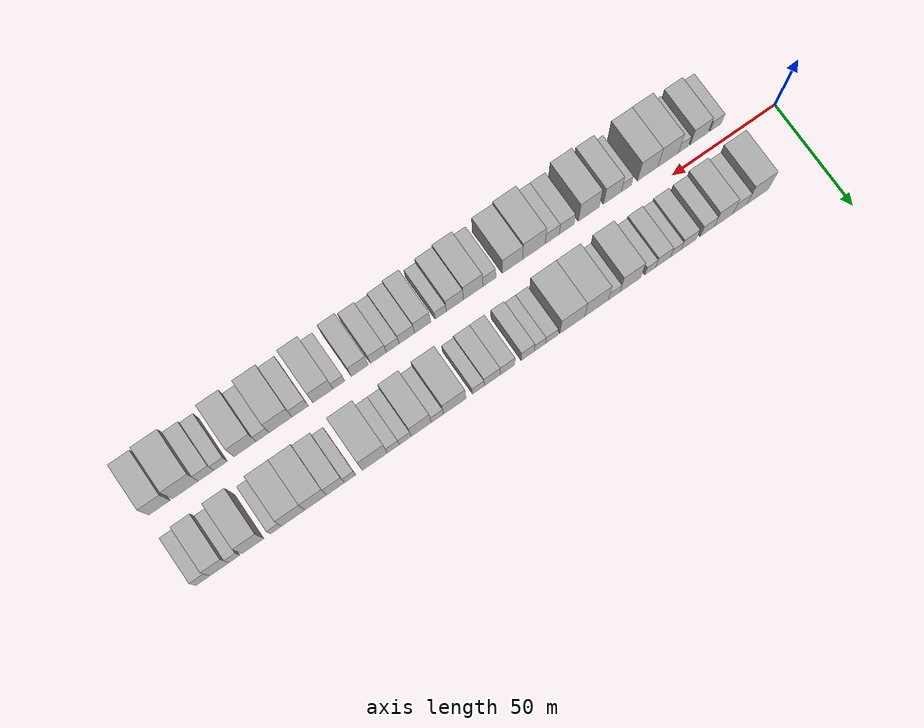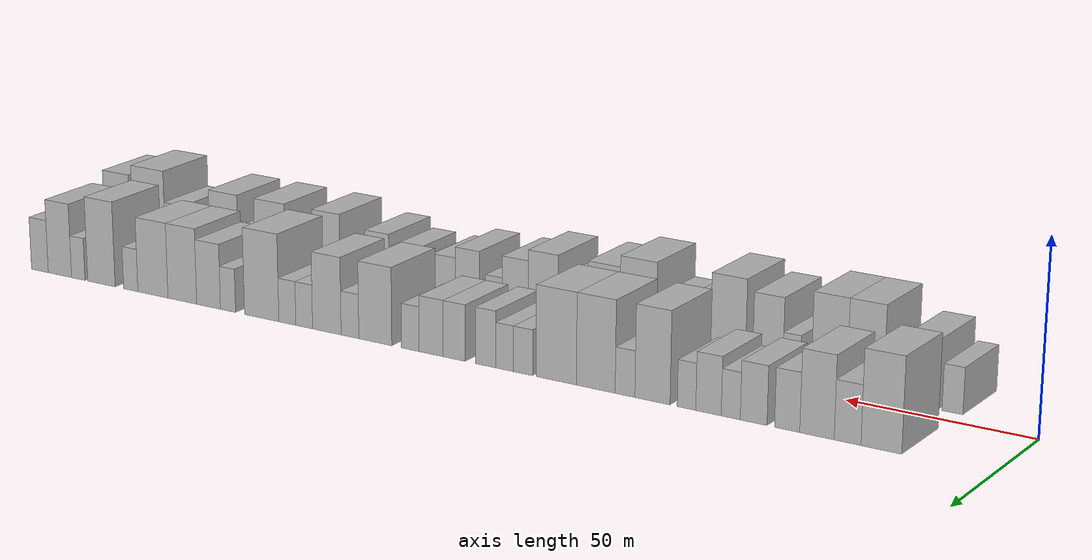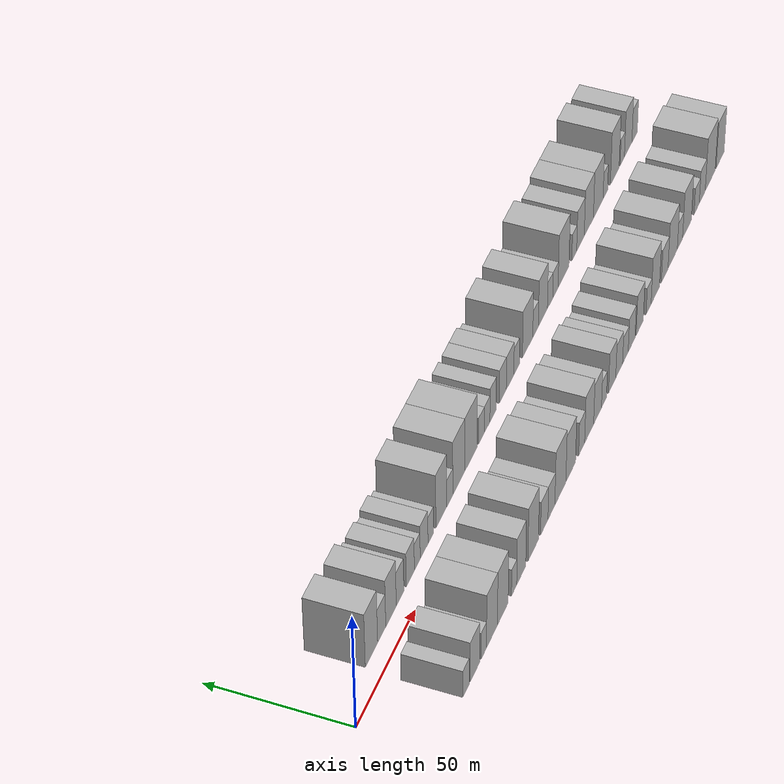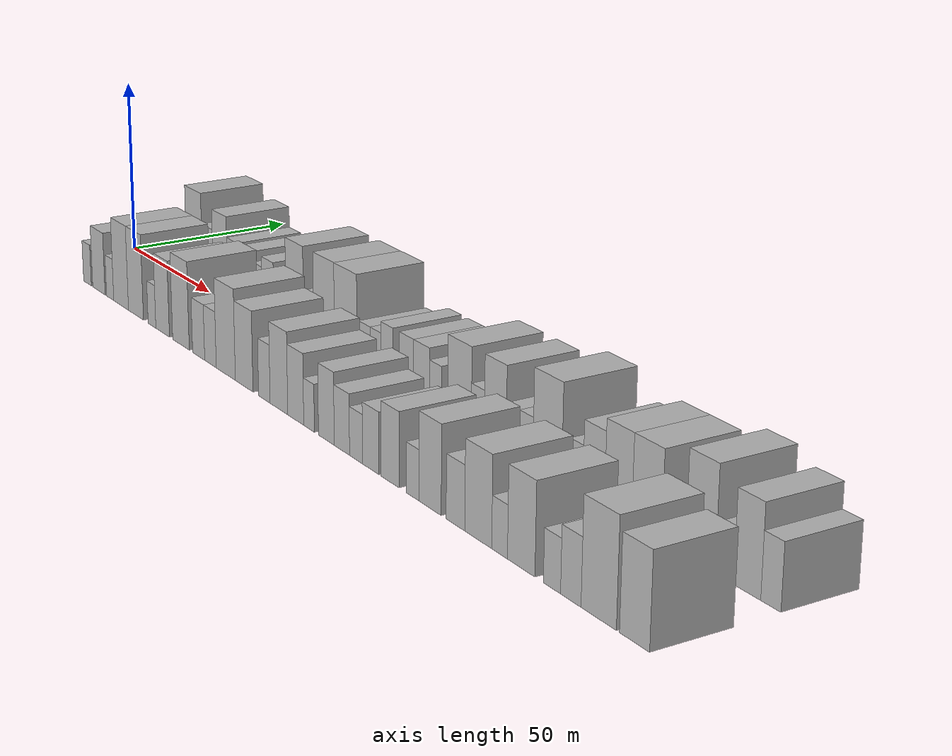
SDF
<sdf version="1.6">
 <world name="default">
  <scene>
   <sky><clouds><speed>12</speed></clouds></sky>
   <ambient>0.4 0.4 0.4 1</ambient>
   <background>0.7 0.7 0.7 1</background>
   <shadows>1</shadows>
  </scene>
  <gravity>0 0 -9.8066</gravity>
  <magnetic_field>6e-06 2.3e-05 -4.2e-05</magnetic_field>
  <physics default="0" name="default_physics" type="ode">
   <ode>
    <solver>
     <type>quick</type>
     <iters>10</iters>
     <sor>1.0</sor>
     <use_dynamic_moi_rescaling>0</use_dynamic_moi_rescaling>
    </solver>
    <constraints>
     <cfm>0</cfm>
     <erp>0.2</erp>
     <contact_max_correcting_vel>100</contact_max_correcting_vel>
     <contact_surface_layer>0.001</contact_surface_layer>
    </constraints>
   </ode>
   <max_step_size>0.004</max_step_size>
   <real_time_factor>1</real_time_factor>
   <real_time_update_rate>250</real_time_update_rate>
  </physics>
  <light name="sun" type="directional">
   <pose>0 0 10 0 0 0</pose>
   <diffuse>0.8 0.8 0.8 1</diffuse>
   <specular>0.2 0.2 0.2 1</specular>
   <attenuation>
    <range>1000</range>
    <constant>0.9</constant>
    <linear>0.01</linear>
    <quadratic>0.001</quadratic>
   </attenuation>
   <direction>-0.5 0.1 -0.9</direction>
  </light>
  <model name="building_1">
   <static>1</static>
   <pose>28.2035 16.0000 0 0.000000 0.000000 1.570796</pose>
   <link name="link">
    <pose>0 0 12.00 0 0 0</pose>
    <collision name="collision"><geometry><box><size>20.0000 10.4070 24.0000</size></box></geometry></collision>
    <visual name="visual">
     <cast_shadows>0</cast_shadows>
     <geometry><box><size>20.0000 10.4070 24.0000</size></box></geometry>
     <material>
      <script>
       <uri>model://HANNAS_wall/materials/scripts</uri>
       <uri>model://HANNAS_wall/materials/textures</uri>
       <name>vrc/HANNAS_wall</name>
      </script>
     </material>
    </visual>
   </link>
  </model>
  <model name="building_2">
   <static>1</static>
   <pose>36.8706 16.0000 0 0.000000 0.000000 1.570796</pose>
   <link name="link">
    <pose>0 0 7.50 0 0 0</pose>
    <collision name="collision"><geometry><box><size>20.0000 6.9271 15.0000</size></box></geometry></collision>
    <visual name="visual">
     <cast_shadows>0</cast_shadows>
     <geometry><box><size>20.0000 6.9271 15.0000</size></box></geometry>
     <material>
      <script>
       <uri>model://HANNAS_wall/materials/scripts</uri>
       <uri>model://HANNAS_wall/materials/textures</uri>
       <name>vrc/HANNAS_wall</name>
      </script>
     </material>
    </visual>
   </link>
  </model>
  <model name="building_3">
   <static>1</static>
   <pose>44.8318 16.0000 0 0.000000 0.000000 1.570796</pose>
   <link name="link">
    <pose>0 0 10.50 0 0 0</pose>
    <collision name="collision"><geometry><box><size>20.0000 8.9954 21.0000</size></box></geometry></collision>
    <visual name="visual">
     <cast_shadows>0</cast_shadows>
     <geometry><box><size>20.0000 8.9954 21.0000</size></box></geometry>
     <material>
      <script>
       <uri>model://HANNAS_wall/materials/scripts</uri>
       <uri>model://HANNAS_wall/materials/textures</uri>
       <name>vrc/HANNAS_wall</name>
      </script>
     </material>
    </visual>
   </link>
  </model>
  <model name="building_4">
   <static>1</static>
   <pose>52.6626 16.0000 0 0.000000 0.000000 1.570796</pose>
   <link name="link">
    <pose>0 0 7.50 0 0 0</pose>
    <collision name="collision"><geometry><box><size>20.0000 6.6663 15.0000</size></box></geometry></collision>
    <visual name="visual">
     <cast_shadows>0</cast_shadows>
     <geometry><box><size>20.0000 6.6663 15.0000</size></box></geometry>
     <material>
      <script>
       <uri>model://HANNAS_wall/materials/scripts</uri>
       <uri>model://HANNAS_wall/materials/textures</uri>
       <name>vrc/HANNAS_wall</name>
      </script>
     </material>
    </visual>
   </link>
  </model>
  <model name="building_5">
   <static>1</static>
   <pose>61.5782 16.0000 0 0.000000 0.000000 1.570796</pose>
   <link name="link">
    <pose>0 0 7.50 0 0 0</pose>
    <collision name="collision"><geometry><box><size>20.0000 7.1649 15.0000</size></box></geometry></collision>
    <visual name="visual">
     <cast_shadows>0</cast_shadows>
     <geometry><box><size>20.0000 7.1649 15.0000</size></box></geometry>
     <material>
      <script>
       <uri>model://HANNAS_wall/materials/scripts</uri>
       <uri>model://HANNAS_wall/materials/textures</uri>
       <name>vrc/HANNAS_wall</name>
      </script>
     </material>
    </visual>
   </link>
  </model>
  <model name="building_6">
   <static>1</static>
   <pose>67.7352 16.0000 0 0.000000 0.000000 1.570796</pose>
   <link name="link">
    <pose>0 0 6.00 0 0 0</pose>
    <collision name="collision"><geometry><box><size>20.0000 5.1490 12.0000</size></box></geometry></collision>
    <visual name="visual">
     <cast_shadows>0</cast_shadows>
     <geometry><box><size>20.0000 5.1490 12.0000</size></box></geometry>
     <material>
      <script>
       <uri>model://HANNAS_wall/materials/scripts</uri>
       <uri>model://HANNAS_wall/materials/textures</uri>
       <name>vrc/HANNAS_wall</name>
      </script>
     </material>
    </visual>
   </link>
  </model>
  <model name="building_7">
   <static>1</static>
   <pose>73.7785 16.0000 0 0.000000 0.000000 1.570796</pose>
   <link name="link">
    <pose>0 0 7.50 0 0 0</pose>
    <collision name="collision"><geometry><box><size>20.0000 6.9376 15.0000</size></box></geometry></collision>
    <visual name="visual">
     <cast_shadows>0</cast_shadows>
     <geometry><box><size>20.0000 6.9376 15.0000</size></box></geometry>
     <material>
      <script>
       <uri>model://HANNAS_wall/materials/scripts</uri>
       <uri>model://HANNAS_wall/materials/textures</uri>
       <name>vrc/HANNAS_wall</name>
      </script>
     </material>
    </visual>
   </link>
  </model>
  <model name="building_8">
   <static>1</static>
   <pose>79.8023 16.0000 0 0.000000 0.000000 1.570796</pose>
   <link name="link">
    <pose>0 0 6.00 0 0 0</pose>
    <collision name="collision"><geometry><box><size>20.0000 5.1100 12.0000</size></box></geometry></collision>
    <visual name="visual">
     <cast_shadows>0</cast_shadows>
     <geometry><box><size>20.0000 5.1100 12.0000</size></box></geometry>
     <material>
      <script>
       <uri>model://HANNAS_wall/materials/scripts</uri>
       <uri>model://HANNAS_wall/materials/textures</uri>
       <name>vrc/HANNAS_wall</name>
      </script>
     </material>
    </visual>
   </link>
  </model>
  <model name="building_9">
   <static>1</static>
   <pose>89.2680 16.0000 0 0.000000 0.000000 1.570796</pose>
   <link name="link">
    <pose>0 0 12.00 0 0 0</pose>
    <collision name="collision"><geometry><box><size>20.0000 9.8214 24.0000</size></box></geometry></collision>
    <visual name="visual">
     <cast_shadows>0</cast_shadows>
     <geometry><box><size>20.0000 9.8214 24.0000</size></box></geometry>
     <material>
      <script>
       <uri>model://HANNAS_wall/materials/scripts</uri>
       <uri>model://HANNAS_wall/materials/textures</uri>
       <name>vrc/HANNAS_wall</name>
      </script>
     </material>
    </visual>
   </link>
  </model>
  <model name="building_10">
   <static>1</static>
   <pose>96.9650 16.0000 0 0.000000 0.000000 1.570796</pose>
   <link name="link">
    <pose>0 0 6.00 0 0 0</pose>
    <collision name="collision"><geometry><box><size>20.0000 5.5726 12.0000</size></box></geometry></collision>
    <visual name="visual">
     <cast_shadows>0</cast_shadows>
     <geometry><box><size>20.0000 5.5726 12.0000</size></box></geometry>
     <material>
      <script>
       <uri>model://HANNAS_wall/materials/scripts</uri>
       <uri>model://HANNAS_wall/materials/textures</uri>
       <name>vrc/HANNAS_wall</name>
      </script>
     </material>
    </visual>
   </link>
  </model>
  <model name="building_11">
   <static>1</static>
   <pose>105.2956 16.0000 0 0.000000 0.000000 1.570796</pose>
   <link name="link">
    <pose>0 0 12.00 0 0 0</pose>
    <collision name="collision"><geometry><box><size>20.0000 11.0885 24.0000</size></box></geometry></collision>
    <visual name="visual">
     <cast_shadows>0</cast_shadows>
     <geometry><box><size>20.0000 11.0885 24.0000</size></box></geometry>
     <material>
      <script>
       <uri>model://HANNAS_wall/materials/scripts</uri>
       <uri>model://HANNAS_wall/materials/textures</uri>
       <name>vrc/HANNAS_wall</name>
      </script>
     </material>
    </visual>
   </link>
  </model>
  <model name="building_12">
   <static>1</static>
   <pose>116.6909 16.0000 0 0.000000 0.000000 1.570796</pose>
   <link name="link">
    <pose>0 0 12.00 0 0 0</pose>
    <collision name="collision"><geometry><box><size>20.0000 11.7021 24.0000</size></box></geometry></collision>
    <visual name="visual">
     <cast_shadows>0</cast_shadows>
     <geometry><box><size>20.0000 11.7021 24.0000</size></box></geometry>
     <material>
      <script>
       <uri>model://HANNAS_wall/materials/scripts</uri>
       <uri>model://HANNAS_wall/materials/textures</uri>
       <name>vrc/HANNAS_wall</name>
      </script>
     </material>
    </visual>
   </link>
  </model>
  <model name="building_13">
   <static>1</static>
   <pose>126.3763 16.0000 0 0.000000 0.000000 1.570796</pose>
   <link name="link">
    <pose>0 0 6.00 0 0 0</pose>
    <collision name="collision"><geometry><box><size>20.0000 5.6688 12.0000</size></box></geometry></collision>
    <visual name="visual">
     <cast_shadows>0</cast_shadows>
     <geometry><box><size>20.0000 5.6688 12.0000</size></box></geometry>
     <material>
      <script>
       <uri>model://HANNAS_wall/materials/scripts</uri>
       <uri>model://HANNAS_wall/materials/textures</uri>
       <name>vrc/HANNAS_wall</name>
      </script>
     </material>
    </visual>
   </link>
  </model>
  <model name="building_14">
   <static>1</static>
   <pose>131.8402 16.0000 0 0.000000 0.000000 1.570796</pose>
   <link name="link">
    <pose>0 0 6.00 0 0 0</pose>
    <collision name="collision"><geometry><box><size>20.0000 5.2590 12.0000</size></box></geometry></collision>
    <visual name="visual">
     <cast_shadows>0</cast_shadows>
     <geometry><box><size>20.0000 5.2590 12.0000</size></box></geometry>
     <material>
      <script>
       <uri>model://HANNAS_wall/materials/scripts</uri>
       <uri>model://HANNAS_wall/materials/textures</uri>
       <name>vrc/HANNAS_wall</name>
      </script>
     </material>
    </visual>
   </link>
  </model>
  <model name="building_15">
   <static>1</static>
   <pose>137.5098 16.0000 0 0.000000 0.000000 1.570796</pose>
   <link name="link">
    <pose>0 0 7.50 0 0 0</pose>
    <collision name="collision"><geometry><box><size>20.0000 6.0801 15.0000</size></box></geometry></collision>
    <visual name="visual">
     <cast_shadows>0</cast_shadows>
     <geometry><box><size>20.0000 6.0801 15.0000</size></box></geometry>
     <material>
      <script>
       <uri>model://HANNAS_wall/materials/scripts</uri>
       <uri>model://HANNAS_wall/materials/textures</uri>
       <name>vrc/HANNAS_wall</name>
      </script>
     </material>
    </visual>
   </link>
  </model>
  <model name="building_16">
   <static>1</static>
   <pose>146.9036 16.0000 0 0.000000 0.000000 1.570796</pose>
   <link name="link">
    <pose>0 0 7.50 0 0 0</pose>
    <collision name="collision"><geometry><box><size>20.0000 6.7075 15.0000</size></box></geometry></collision>
    <visual name="visual">
     <cast_shadows>0</cast_shadows>
     <geometry><box><size>20.0000 6.7075 15.0000</size></box></geometry>
     <material>
      <script>
       <uri>model://HANNAS_wall/materials/scripts</uri>
       <uri>model://HANNAS_wall/materials/textures</uri>
       <name>vrc/HANNAS_wall</name>
      </script>
     </material>
    </visual>
   </link>
  </model>
  <model name="building_17">
   <static>1</static>
   <pose>153.9549 16.0000 0 0.000000 0.000000 1.570796</pose>
   <link name="link">
    <pose>0 0 7.50 0 0 0</pose>
    <collision name="collision"><geometry><box><size>20.0000 7.3951 15.0000</size></box></geometry></collision>
    <visual name="visual">
     <cast_shadows>0</cast_shadows>
     <geometry><box><size>20.0000 7.3951 15.0000</size></box></geometry>
     <material>
      <script>
       <uri>model://HANNAS_wall/materials/scripts</uri>
       <uri>model://HANNAS_wall/materials/textures</uri>
       <name>vrc/HANNAS_wall</name>
      </script>
     </material>
    </visual>
   </link>
  </model>
  <model name="building_18">
   <static>1</static>
   <pose>160.3797 16.0000 0 0.000000 0.000000 1.570796</pose>
   <link name="link">
    <pose>0 0 6.00 0 0 0</pose>
    <collision name="collision"><geometry><box><size>20.0000 5.4544 12.0000</size></box></geometry></collision>
    <visual name="visual">
     <cast_shadows>0</cast_shadows>
     <geometry><box><size>20.0000 5.4544 12.0000</size></box></geometry>
     <material>
      <script>
       <uri>model://HANNAS_wall/materials/scripts</uri>
       <uri>model://HANNAS_wall/materials/textures</uri>
       <name>vrc/HANNAS_wall</name>
      </script>
     </material>
    </visual>
   </link>
  </model>
  <model name="building_19">
   <static>1</static>
   <pose>171.2821 16.0000 0 0.000000 0.000000 1.570796</pose>
   <link name="link">
    <pose>0 0 10.50 0 0 0</pose>
    <collision name="collision"><geometry><box><size>20.0000 10.3504 21.0000</size></box></geometry></collision>
    <visual name="visual">
     <cast_shadows>0</cast_shadows>
     <geometry><box><size>20.0000 10.3504 21.0000</size></box></geometry>
     <material>
      <script>
       <uri>model://HANNAS_wall/materials/scripts</uri>
       <uri>model://HANNAS_wall/materials/textures</uri>
       <name>vrc/HANNAS_wall</name>
      </script>
     </material>
    </visual>
   </link>
  </model>
  <model name="building_20">
   <static>1</static>
   <pose>179.2618 16.0000 0 0.000000 0.000000 1.570796</pose>
   <link name="link">
    <pose>0 0 6.00 0 0 0</pose>
    <collision name="collision"><geometry><box><size>20.0000 5.6091 12.0000</size></box></geometry></collision>
    <visual name="visual">
     <cast_shadows>0</cast_shadows>
     <geometry><box><size>20.0000 5.6091 12.0000</size></box></geometry>
     <material>
      <script>
       <uri>model://HANNAS_wall/materials/scripts</uri>
       <uri>model://HANNAS_wall/materials/textures</uri>
       <name>vrc/HANNAS_wall</name>
      </script>
     </material>
    </visual>
   </link>
  </model>
  <model name="building_21">
   <static>1</static>
   <pose>186.6494 16.0000 0 0.000000 0.000000 1.570796</pose>
   <link name="link">
    <pose>0 0 10.50 0 0 0</pose>
    <collision name="collision"><geometry><box><size>20.0000 9.1661 21.0000</size></box></geometry></collision>
    <visual name="visual">
     <cast_shadows>0</cast_shadows>
     <geometry><box><size>20.0000 9.1661 21.0000</size></box></geometry>
     <material>
      <script>
       <uri>model://HANNAS_wall/materials/scripts</uri>
       <uri>model://HANNAS_wall/materials/textures</uri>
       <name>vrc/HANNAS_wall</name>
      </script>
     </material>
    </visual>
   </link>
  </model>
  <model name="building_22">
   <static>1</static>
   <pose>193.9422 16.0000 0 0.000000 0.000000 1.570796</pose>
   <link name="link">
    <pose>0 0 6.00 0 0 0</pose>
    <collision name="collision"><geometry><box><size>20.0000 5.4194 12.0000</size></box></geometry></collision>
    <visual name="visual">
     <cast_shadows>0</cast_shadows>
     <geometry><box><size>20.0000 5.4194 12.0000</size></box></geometry>
     <material>
      <script>
       <uri>model://HANNAS_wall/materials/scripts</uri>
       <uri>model://HANNAS_wall/materials/textures</uri>
       <name>vrc/HANNAS_wall</name>
      </script>
     </material>
    </visual>
   </link>
  </model>
  <model name="building_23">
   <static>1</static>
   <pose>199.4075 16.0000 0 0.000000 0.000000 1.570796</pose>
   <link name="link">
    <pose>0 0 6.00 0 0 0</pose>
    <collision name="collision"><geometry><box><size>20.0000 5.5114 12.0000</size></box></geometry></collision>
    <visual name="visual">
     <cast_shadows>0</cast_shadows>
     <geometry><box><size>20.0000 5.5114 12.0000</size></box></geometry>
     <material>
      <script>
       <uri>model://HANNAS_wall/materials/scripts</uri>
       <uri>model://HANNAS_wall/materials/textures</uri>
       <name>vrc/HANNAS_wall</name>
      </script>
     </material>
    </visual>
   </link>
  </model>
  <model name="building_24">
   <static>1</static>
   <pose>207.8202 16.0000 0 0.000000 0.000000 1.570796</pose>
   <link name="link">
    <pose>0 0 12.00 0 0 0</pose>
    <collision name="collision"><geometry><box><size>20.0000 11.3139 24.0000</size></box></geometry></collision>
    <visual name="visual">
     <cast_shadows>0</cast_shadows>
     <geometry><box><size>20.0000 11.3139 24.0000</size></box></geometry>
     <material>
      <script>
       <uri>model://HANNAS_wall/materials/scripts</uri>
       <uri>model://HANNAS_wall/materials/textures</uri>
       <name>vrc/HANNAS_wall</name>
      </script>
     </material>
    </visual>
   </link>
  </model>
  <model name="building_25">
   <static>1</static>
   <pose>219.0032 16.0000 0 0.000000 0.000000 1.570796</pose>
   <link name="link">
    <pose>0 0 6.00 0 0 0</pose>
    <collision name="collision"><geometry><box><size>20.0000 5.0522 12.0000</size></box></geometry></collision>
    <visual name="visual">
     <cast_shadows>0</cast_shadows>
     <geometry><box><size>20.0000 5.0522 12.0000</size></box></geometry>
     <material>
      <script>
       <uri>model://HANNAS_wall/materials/scripts</uri>
       <uri>model://HANNAS_wall/materials/textures</uri>
       <name>vrc/HANNAS_wall</name>
      </script>
     </material>
    </visual>
   </link>
  </model>
  <model name="building_26">
   <static>1</static>
   <pose>225.5476 16.0000 0 0.000000 0.000000 1.570796</pose>
   <link name="link">
    <pose>0 0 9.00 0 0 0</pose>
    <collision name="collision"><geometry><box><size>20.0000 8.0365 18.0000</size></box></geometry></collision>
    <visual name="visual">
     <cast_shadows>0</cast_shadows>
     <geometry><box><size>20.0000 8.0365 18.0000</size></box></geometry>
     <material>
      <script>
       <uri>model://HANNAS_wall/materials/scripts</uri>
       <uri>model://HANNAS_wall/materials/textures</uri>
       <name>vrc/HANNAS_wall</name>
      </script>
     </material>
    </visual>
   </link>
  </model>
  <model name="building_27">
   <static>1</static>
   <pose>234.4667 16.0000 0 0.000000 0.000000 1.570796</pose>
   <link name="link">
    <pose>0 0 10.50 0 0 0</pose>
    <collision name="collision"><geometry><box><size>20.0000 9.8018 21.0000</size></box></geometry></collision>
    <visual name="visual">
     <cast_shadows>0</cast_shadows>
     <geometry><box><size>20.0000 9.8018 21.0000</size></box></geometry>
     <material>
      <script>
       <uri>model://HANNAS_wall/materials/scripts</uri>
       <uri>model://HANNAS_wall/materials/textures</uri>
       <name>vrc/HANNAS_wall</name>
      </script>
     </material>
    </visual>
   </link>
  </model>
  <model name="building_28">
   <static>1</static>
   <pose>244.5770 16.0000 0 0.000000 0.000000 1.570796</pose>
   <link name="link">
    <pose>0 0 10.50 0 0 0</pose>
    <collision name="collision"><geometry><box><size>20.0000 10.4188 21.0000</size></box></geometry></collision>
    <visual name="visual">
     <cast_shadows>0</cast_shadows>
     <geometry><box><size>20.0000 10.4188 21.0000</size></box></geometry>
     <material>
      <script>
       <uri>model://HANNAS_wall/materials/scripts</uri>
       <uri>model://HANNAS_wall/materials/textures</uri>
       <name>vrc/HANNAS_wall</name>
      </script>
     </material>
    </visual>
   </link>
  </model>
  <model name="building_29">
   <static>1</static>
   <pose>252.2715 16.0000 0 0.000000 0.000000 1.570796</pose>
   <link name="link">
    <pose>0 0 6.00 0 0 0</pose>
    <collision name="collision"><geometry><box><size>20.0000 4.9702 12.0000</size></box></geometry></collision>
    <visual name="visual">
     <cast_shadows>0</cast_shadows>
     <geometry><box><size>20.0000 4.9702 12.0000</size></box></geometry>
     <material>
      <script>
       <uri>model://HANNAS_wall/materials/scripts</uri>
       <uri>model://HANNAS_wall/materials/textures</uri>
       <name>vrc/HANNAS_wall</name>
      </script>
     </material>
    </visual>
   </link>
  </model>
  <model name="building_30">
   <static>1</static>
   <pose>262.6057 16.0000 0 0.000000 0.000000 1.570796</pose>
   <link name="link">
    <pose>0 0 12.00 0 0 0</pose>
    <collision name="collision"><geometry><box><size>20.0000 9.6982 24.0000</size></box></geometry></collision>
    <visual name="visual">
     <cast_shadows>0</cast_shadows>
     <geometry><box><size>20.0000 9.6982 24.0000</size></box></geometry>
     <material>
      <script>
       <uri>model://HANNAS_wall/materials/scripts</uri>
       <uri>model://HANNAS_wall/materials/textures</uri>
       <name>vrc/HANNAS_wall</name>
      </script>
     </material>
    </visual>
   </link>
  </model>
  <model name="building_31">
   <static>1</static>
   <pose>270.8627 16.0000 0 0.000000 0.000000 1.570796</pose>
   <link name="link">
    <pose>0 0 6.00 0 0 0</pose>
    <collision name="collision"><geometry><box><size>20.0000 4.8157 12.0000</size></box></geometry></collision>
    <visual name="visual">
     <cast_shadows>0</cast_shadows>
     <geometry><box><size>20.0000 4.8157 12.0000</size></box></geometry>
     <material>
      <script>
       <uri>model://HANNAS_wall/materials/scripts</uri>
       <uri>model://HANNAS_wall/materials/textures</uri>
       <name>vrc/HANNAS_wall</name>
      </script>
     </material>
    </visual>
   </link>
  </model>
  <model name="building_32">
   <static>1</static>
   <pose>277.4708 16.0000 0 0.000000 0.000000 1.570796</pose>
   <link name="link">
    <pose>0 0 10.50 0 0 0</pose>
    <collision name="collision"><geometry><box><size>20.0000 8.4004 21.0000</size></box></geometry></collision>
    <visual name="visual">
     <cast_shadows>0</cast_shadows>
     <geometry><box><size>20.0000 8.4004 21.0000</size></box></geometry>
     <material>
      <script>
       <uri>model://HANNAS_wall/materials/scripts</uri>
       <uri>model://HANNAS_wall/materials/textures</uri>
       <name>vrc/HANNAS_wall</name>
      </script>
     </material>
    </visual>
   </link>
  </model>
  <model name="building_33">
   <static>1</static>
   <pose>284.7169 16.0000 0 0.000000 0.000000 1.570796</pose>
   <link name="link">
    <pose>0 0 7.50 0 0 0</pose>
    <collision name="collision"><geometry><box><size>20.0000 6.0919 15.0000</size></box></geometry></collision>
    <visual name="visual">
     <cast_shadows>0</cast_shadows>
     <geometry><box><size>20.0000 6.0919 15.0000</size></box></geometry>
     <material>
      <script>
       <uri>model://HANNAS_wall/materials/scripts</uri>
       <uri>model://HANNAS_wall/materials/textures</uri>
       <name>vrc/HANNAS_wall</name>
      </script>
     </material>
    </visual>
   </link>
  </model>
  <model name="building_34">
   <static>1</static>
   <pose>24.7283 -16.0000 0 0.000000 0.000000 1.570796</pose>
   <link name="link">
    <pose>0 0 6.00 0 0 0</pose>
    <collision name="collision"><geometry><box><size>20.0000 5.4567 12.0000</size></box></geometry></collision>
    <visual name="visual">
     <cast_shadows>0</cast_shadows>
     <geometry><box><size>20.0000 5.4567 12.0000</size></box></geometry>
     <material>
      <script>
       <uri>model://HANNAS_wall/materials/scripts</uri>
       <uri>model://HANNAS_wall/materials/textures</uri>
       <name>vrc/HANNAS_wall</name>
      </script>
     </material>
    </visual>
   </link>
  </model>
  <model name="building_35">
   <static>1</static>
   <pose>32.7598 -16.0000 0 0.000000 0.000000 1.570796</pose>
   <link name="link">
    <pose>0 0 9.00 0 0 0</pose>
    <collision name="collision"><geometry><box><size>20.0000 8.6064 18.0000</size></box></geometry></collision>
    <visual name="visual">
     <cast_shadows>0</cast_shadows>
     <geometry><box><size>20.0000 8.6064 18.0000</size></box></geometry>
     <material>
      <script>
       <uri>model://HANNAS_wall/materials/scripts</uri>
       <uri>model://HANNAS_wall/materials/textures</uri>
       <name>vrc/HANNAS_wall</name>
      </script>
     </material>
    </visual>
   </link>
  </model>
  <model name="building_36">
   <static>1</static>
   <pose>40.5078 -16.0000 0 0.000000 0.000000 1.570796</pose>
   <link name="link">
    <pose>0 0 6.00 0 0 0</pose>
    <collision name="collision"><geometry><box><size>20.0000 4.8897 12.0000</size></box></geometry></collision>
    <visual name="visual">
     <cast_shadows>0</cast_shadows>
     <geometry><box><size>20.0000 4.8897 12.0000</size></box></geometry>
     <material>
      <script>
       <uri>model://HANNAS_wall/materials/scripts</uri>
       <uri>model://HANNAS_wall/materials/textures</uri>
       <name>vrc/HANNAS_wall</name>
      </script>
     </material>
    </visual>
   </link>
  </model>
  <model name="building_37">
   <static>1</static>
   <pose>47.8938 -16.0000 0 0.000000 0.000000 1.570796</pose>
   <link name="link">
    <pose>0 0 12.00 0 0 0</pose>
    <collision name="collision"><geometry><box><size>20.0000 9.8823 24.0000</size></box></geometry></collision>
    <visual name="visual">
     <cast_shadows>0</cast_shadows>
     <geometry><box><size>20.0000 9.8823 24.0000</size></box></geometry>
     <material>
      <script>
       <uri>model://HANNAS_wall/materials/scripts</uri>
       <uri>model://HANNAS_wall/materials/textures</uri>
       <name>vrc/HANNAS_wall</name>
      </script>
     </material>
    </visual>
   </link>
  </model>
  <model name="building_38">
   <static>1</static>
   <pose>57.7084 -16.0000 0 0.000000 0.000000 1.570796</pose>
   <link name="link">
    <pose>0 0 12.00 0 0 0</pose>
    <collision name="collision"><geometry><box><size>20.0000 9.7469 24.0000</size></box></geometry></collision>
    <visual name="visual">
     <cast_shadows>0</cast_shadows>
     <geometry><box><size>20.0000 9.7469 24.0000</size></box></geometry>
     <material>
      <script>
       <uri>model://HANNAS_wall/materials/scripts</uri>
       <uri>model://HANNAS_wall/materials/textures</uri>
       <name>vrc/HANNAS_wall</name>
      </script>
     </material>
    </visual>
   </link>
  </model>
  <model name="building_39">
   <static>1</static>
   <pose>68.0237 -16.0000 0 0.000000 0.000000 1.570796</pose>
   <link name="link">
    <pose>0 0 6.00 0 0 0</pose>
    <collision name="collision"><geometry><box><size>20.0000 4.8837 12.0000</size></box></geometry></collision>
    <visual name="visual">
     <cast_shadows>0</cast_shadows>
     <geometry><box><size>20.0000 4.8837 12.0000</size></box></geometry>
     <material>
      <script>
       <uri>model://HANNAS_wall/materials/scripts</uri>
       <uri>model://HANNAS_wall/materials/textures</uri>
       <name>vrc/HANNAS_wall</name>
      </script>
     </material>
    </visual>
   </link>
  </model>
  <model name="building_40">
   <static>1</static>
   <pose>74.6983 -16.0000 0 0.000000 0.000000 1.570796</pose>
   <link name="link">
    <pose>0 0 10.50 0 0 0</pose>
    <collision name="collision"><geometry><box><size>20.0000 8.4655 21.0000</size></box></geometry></collision>
    <visual name="visual">
     <cast_shadows>0</cast_shadows>
     <geometry><box><size>20.0000 8.4655 21.0000</size></box></geometry>
     <material>
      <script>
       <uri>model://HANNAS_wall/materials/scripts</uri>
       <uri>model://HANNAS_wall/materials/textures</uri>
       <name>vrc/HANNAS_wall</name>
      </script>
     </material>
    </visual>
   </link>
  </model>
  <model name="building_41">
   <static>1</static>
   <pose>85.9232 -16.0000 0 0.000000 0.000000 1.570796</pose>
   <link name="link">
    <pose>0 0 12.00 0 0 0</pose>
    <collision name="collision"><geometry><box><size>20.0000 9.9843 24.0000</size></box></geometry></collision>
    <visual name="visual">
     <cast_shadows>0</cast_shadows>
     <geometry><box><size>20.0000 9.9843 24.0000</size></box></geometry>
     <material>
      <script>
       <uri>model://HANNAS_wall/materials/scripts</uri>
       <uri>model://HANNAS_wall/materials/textures</uri>
       <name>vrc/HANNAS_wall</name>
      </script>
     </material>
    </visual>
   </link>
  </model>
  <model name="building_42">
   <static>1</static>
   <pose>96.4489 -16.0000 0 0.000000 0.000000 1.570796</pose>
   <link name="link">
    <pose>0 0 7.50 0 0 0</pose>
    <collision name="collision"><geometry><box><size>20.0000 7.0672 15.0000</size></box></geometry></collision>
    <visual name="visual">
     <cast_shadows>0</cast_shadows>
     <geometry><box><size>20.0000 7.0672 15.0000</size></box></geometry>
     <material>
      <script>
       <uri>model://HANNAS_wall/materials/scripts</uri>
       <uri>model://HANNAS_wall/materials/textures</uri>
       <name>vrc/HANNAS_wall</name>
      </script>
     </material>
    </visual>
   </link>
  </model>
  <model name="building_43">
   <static>1</static>
   <pose>103.2986 -16.0000 0 0.000000 0.000000 1.570796</pose>
   <link name="link">
    <pose>0 0 7.50 0 0 0</pose>
    <collision name="collision"><geometry><box><size>20.0000 6.6321 15.0000</size></box></geometry></collision>
    <visual name="visual">
     <cast_shadows>0</cast_shadows>
     <geometry><box><size>20.0000 6.6321 15.0000</size></box></geometry>
     <material>
      <script>
       <uri>model://HANNAS_wall/materials/scripts</uri>
       <uri>model://HANNAS_wall/materials/textures</uri>
       <name>vrc/HANNAS_wall</name>
      </script>
     </material>
    </visual>
   </link>
  </model>
  <model name="building_44">
   <static>1</static>
   <pose>111.9669 -16.0000 0 0.000000 0.000000 1.570796</pose>
   <link name="link">
    <pose>0 0 12.00 0 0 0</pose>
    <collision name="collision"><geometry><box><size>20.0000 10.7046 24.0000</size></box></geometry></collision>
    <visual name="visual">
     <cast_shadows>0</cast_shadows>
     <geometry><box><size>20.0000 10.7046 24.0000</size></box></geometry>
     <material>
      <script>
       <uri>model://HANNAS_wall/materials/scripts</uri>
       <uri>model://HANNAS_wall/materials/textures</uri>
       <name>vrc/HANNAS_wall</name>
      </script>
     </material>
    </visual>
   </link>
  </model>
  <model name="building_45">
   <static>1</static>
   <pose>122.1052 -16.0000 0 0.000000 0.000000 1.570796</pose>
   <link name="link">
    <pose>0 0 10.50 0 0 0</pose>
    <collision name="collision"><geometry><box><size>20.0000 9.5721 21.0000</size></box></geometry></collision>
    <visual name="visual">
     <cast_shadows>0</cast_shadows>
     <geometry><box><size>20.0000 9.5721 21.0000</size></box></geometry>
     <material>
      <script>
       <uri>model://HANNAS_wall/materials/scripts</uri>
       <uri>model://HANNAS_wall/materials/textures</uri>
       <name>vrc/HANNAS_wall</name>
      </script>
     </material>
    </visual>
   </link>
  </model>
  <model name="building_46">
   <static>1</static>
   <pose>132.9129 -16.0000 0 0.000000 0.000000 1.570796</pose>
   <link name="link">
    <pose>0 0 7.50 0 0 0</pose>
    <collision name="collision"><geometry><box><size>20.0000 6.0432 15.0000</size></box></geometry></collision>
    <visual name="visual">
     <cast_shadows>0</cast_shadows>
     <geometry><box><size>20.0000 6.0432 15.0000</size></box></geometry>
     <material>
      <script>
       <uri>model://HANNAS_wall/materials/scripts</uri>
       <uri>model://HANNAS_wall/materials/textures</uri>
       <name>vrc/HANNAS_wall</name>
      </script>
     </material>
    </visual>
   </link>
  </model>
  <model name="building_47">
   <static>1</static>
   <pose>140.4683 -16.0000 0 0.000000 0.000000 1.570796</pose>
   <link name="link">
    <pose>0 0 10.50 0 0 0</pose>
    <collision name="collision"><geometry><box><size>20.0000 9.0676 21.0000</size></box></geometry></collision>
    <visual name="visual">
     <cast_shadows>0</cast_shadows>
     <geometry><box><size>20.0000 9.0676 21.0000</size></box></geometry>
     <material>
      <script>
       <uri>model://HANNAS_wall/materials/scripts</uri>
       <uri>model://HANNAS_wall/materials/textures</uri>
       <name>vrc/HANNAS_wall</name>
      </script>
     </material>
    </visual>
   </link>
  </model>
  <model name="building_48">
   <static>1</static>
   <pose>148.9914 -16.0000 0 0.000000 0.000000 1.570796</pose>
   <link name="link">
    <pose>0 0 9.00 0 0 0</pose>
    <collision name="collision"><geometry><box><size>20.0000 7.9785 18.0000</size></box></geometry></collision>
    <visual name="visual">
     <cast_shadows>0</cast_shadows>
     <geometry><box><size>20.0000 7.9785 18.0000</size></box></geometry>
     <material>
      <script>
       <uri>model://HANNAS_wall/materials/scripts</uri>
       <uri>model://HANNAS_wall/materials/textures</uri>
       <name>vrc/HANNAS_wall</name>
      </script>
     </material>
    </visual>
   </link>
  </model>
  <model name="building_49">
   <static>1</static>
   <pose>155.5949 -16.0000 0 0.000000 0.000000 1.570796</pose>
   <link name="link">
    <pose>0 0 6.00 0 0 0</pose>
    <collision name="collision"><geometry><box><size>20.0000 5.2284 12.0000</size></box></geometry></collision>
    <visual name="visual">
     <cast_shadows>0</cast_shadows>
     <geometry><box><size>20.0000 5.2284 12.0000</size></box></geometry>
     <material>
      <script>
       <uri>model://HANNAS_wall/materials/scripts</uri>
       <uri>model://HANNAS_wall/materials/textures</uri>
       <name>vrc/HANNAS_wall</name>
      </script>
     </material>
    </visual>
   </link>
  </model>
  <model name="building_50">
   <static>1</static>
   <pose>163.9614 -16.0000 0 0.000000 0.000000 1.570796</pose>
   <link name="link">
    <pose>0 0 9.00 0 0 0</pose>
    <collision name="collision"><geometry><box><size>20.0000 7.5047 18.0000</size></box></geometry></collision>
    <visual name="visual">
     <cast_shadows>0</cast_shadows>
     <geometry><box><size>20.0000 7.5047 18.0000</size></box></geometry>
     <material>
      <script>
       <uri>model://HANNAS_wall/materials/scripts</uri>
       <uri>model://HANNAS_wall/materials/textures</uri>
       <name>vrc/HANNAS_wall</name>
      </script>
     </material>
    </visual>
   </link>
  </model>
  <model name="building_51">
   <static>1</static>
   <pose>171.2851 -16.0000 0 0.000000 0.000000 1.570796</pose>
   <link name="link">
    <pose>0 0 7.50 0 0 0</pose>
    <collision name="collision"><geometry><box><size>20.0000 7.1426 15.0000</size></box></geometry></collision>
    <visual name="visual">
     <cast_shadows>0</cast_shadows>
     <geometry><box><size>20.0000 7.1426 15.0000</size></box></geometry>
     <material>
      <script>
       <uri>model://HANNAS_wall/materials/scripts</uri>
       <uri>model://HANNAS_wall/materials/textures</uri>
       <name>vrc/HANNAS_wall</name>
      </script>
     </material>
    </visual>
   </link>
  </model>
  <model name="building_52">
   <static>1</static>
   <pose>177.8125 -16.0000 0 0.000000 0.000000 1.570796</pose>
   <link name="link">
    <pose>0 0 6.00 0 0 0</pose>
    <collision name="collision"><geometry><box><size>20.0000 5.9122 12.0000</size></box></geometry></collision>
    <visual name="visual">
     <cast_shadows>0</cast_shadows>
     <geometry><box><size>20.0000 5.9122 12.0000</size></box></geometry>
     <material>
      <script>
       <uri>model://HANNAS_wall/materials/scripts</uri>
       <uri>model://HANNAS_wall/materials/textures</uri>
       <name>vrc/HANNAS_wall</name>
      </script>
     </material>
    </visual>
   </link>
  </model>
  <model name="building_53">
   <static>1</static>
   <pose>184.4439 -16.0000 0 0.000000 0.000000 1.570796</pose>
   <link name="link">
    <pose>0 0 7.50 0 0 0</pose>
    <collision name="collision"><geometry><box><size>20.0000 7.3506 15.0000</size></box></geometry></collision>
    <visual name="visual">
     <cast_shadows>0</cast_shadows>
     <geometry><box><size>20.0000 7.3506 15.0000</size></box></geometry>
     <material>
      <script>
       <uri>model://HANNAS_wall/materials/scripts</uri>
       <uri>model://HANNAS_wall/materials/textures</uri>
       <name>vrc/HANNAS_wall</name>
      </script>
     </material>
    </visual>
   </link>
  </model>
  <model name="building_54">
   <static>1</static>
   <pose>192.9947 -16.0000 0 0.000000 0.000000 1.570796</pose>
   <link name="link">
    <pose>0 0 9.00 0 0 0</pose>
    <collision name="collision"><geometry><box><size>20.0000 7.7510 18.0000</size></box></geometry></collision>
    <visual name="visual">
     <cast_shadows>0</cast_shadows>
     <geometry><box><size>20.0000 7.7510 18.0000</size></box></geometry>
     <material>
      <script>
       <uri>model://HANNAS_wall/materials/scripts</uri>
       <uri>model://HANNAS_wall/materials/textures</uri>
       <name>vrc/HANNAS_wall</name>
      </script>
     </material>
    </visual>
   </link>
  </model>
  <model name="building_55">
   <static>1</static>
   <pose>202.5693 -16.0000 0 0.000000 0.000000 1.570796</pose>
   <link name="link">
    <pose>0 0 6.00 0 0 0</pose>
    <collision name="collision"><geometry><box><size>20.0000 5.3980 12.0000</size></box></geometry></collision>
    <visual name="visual">
     <cast_shadows>0</cast_shadows>
     <geometry><box><size>20.0000 5.3980 12.0000</size></box></geometry>
     <material>
      <script>
       <uri>model://HANNAS_wall/materials/scripts</uri>
       <uri>model://HANNAS_wall/materials/textures</uri>
       <name>vrc/HANNAS_wall</name>
      </script>
     </material>
    </visual>
   </link>
  </model>
  <model name="building_56">
   <static>1</static>
   <pose>209.8584 -16.0000 0 0.000000 0.000000 1.570796</pose>
   <link name="link">
    <pose>0 0 10.50 0 0 0</pose>
    <collision name="collision"><geometry><box><size>20.0000 9.1803 21.0000</size></box></geometry></collision>
    <visual name="visual">
     <cast_shadows>0</cast_shadows>
     <geometry><box><size>20.0000 9.1803 21.0000</size></box></geometry>
     <material>
      <script>
       <uri>model://HANNAS_wall/materials/scripts</uri>
       <uri>model://HANNAS_wall/materials/textures</uri>
       <name>vrc/HANNAS_wall</name>
      </script>
     </material>
    </visual>
   </link>
  </model>
  <model name="building_57">
   <static>1</static>
   <pose>220.1304 -16.0000 0 0.000000 0.000000 1.570796</pose>
   <link name="link">
    <pose>0 0 7.50 0 0 0</pose>
    <collision name="collision"><geometry><box><size>20.0000 7.3638 15.0000</size></box></geometry></collision>
    <visual name="visual">
     <cast_shadows>0</cast_shadows>
     <geometry><box><size>20.0000 7.3638 15.0000</size></box></geometry>
     <material>
      <script>
       <uri>model://HANNAS_wall/materials/scripts</uri>
       <uri>model://HANNAS_wall/materials/textures</uri>
       <name>vrc/HANNAS_wall</name>
      </script>
     </material>
    </visual>
   </link>
  </model>
  <model name="building_58">
   <static>1</static>
   <pose>228.9992 -16.0000 0 0.000000 0.000000 1.570796</pose>
   <link name="link">
    <pose>0 0 10.50 0 0 0</pose>
    <collision name="collision"><geometry><box><size>20.0000 10.3736 21.0000</size></box></geometry></collision>
    <visual name="visual">
     <cast_shadows>0</cast_shadows>
     <geometry><box><size>20.0000 10.3736 21.0000</size></box></geometry>
     <material>
      <script>
       <uri>model://HANNAS_wall/materials/scripts</uri>
       <uri>model://HANNAS_wall/materials/textures</uri>
       <name>vrc/HANNAS_wall</name>
      </script>
     </material>
    </visual>
   </link>
  </model>
  <model name="building_59">
   <static>1</static>
   <pose>237.1295 -16.0000 0 0.000000 0.000000 1.570796</pose>
   <link name="link">
    <pose>0 0 6.00 0 0 0</pose>
    <collision name="collision"><geometry><box><size>20.0000 5.8871 12.0000</size></box></geometry></collision>
    <visual name="visual">
     <cast_shadows>0</cast_shadows>
     <geometry><box><size>20.0000 5.8871 12.0000</size></box></geometry>
     <material>
      <script>
       <uri>model://HANNAS_wall/materials/scripts</uri>
       <uri>model://HANNAS_wall/materials/textures</uri>
       <name>vrc/HANNAS_wall</name>
      </script>
     </material>
    </visual>
   </link>
  </model>
  <model name="building_60">
   <static>1</static>
   <pose>245.0636 -16.0000 0 0.000000 0.000000 1.570796</pose>
   <link name="link">
    <pose>0 0 10.50 0 0 0</pose>
    <collision name="collision"><geometry><box><size>20.0000 9.9809 21.0000</size></box></geometry></collision>
    <visual name="visual">
     <cast_shadows>0</cast_shadows>
     <geometry><box><size>20.0000 9.9809 21.0000</size></box></geometry>
     <material>
      <script>
       <uri>model://HANNAS_wall/materials/scripts</uri>
       <uri>model://HANNAS_wall/materials/textures</uri>
       <name>vrc/HANNAS_wall</name>
      </script>
     </material>
    </visual>
   </link>
  </model>
  <model name="building_61">
   <static>1</static>
   <pose>256.0423 -16.0000 0 0.000000 0.000000 1.570796</pose>
   <link name="link">
    <pose>0 0 6.00 0 0 0</pose>
    <collision name="collision"><geometry><box><size>20.0000 5.9766 12.0000</size></box></geometry></collision>
    <visual name="visual">
     <cast_shadows>0</cast_shadows>
     <geometry><box><size>20.0000 5.9766 12.0000</size></box></geometry>
     <material>
      <script>
       <uri>model://HANNAS_wall/materials/scripts</uri>
       <uri>model://HANNAS_wall/materials/textures</uri>
       <name>vrc/HANNAS_wall</name>
      </script>
     </material>
    </visual>
   </link>
  </model>
  <model name="building_62">
   <static>1</static>
   <pose>262.5121 -16.0000 0 0.000000 0.000000 1.570796</pose>
   <link name="link">
    <pose>0 0 7.50 0 0 0</pose>
    <collision name="collision"><geometry><box><size>20.0000 6.9629 15.0000</size></box></geometry></collision>
    <visual name="visual">
     <cast_shadows>0</cast_shadows>
     <geometry><box><size>20.0000 6.9629 15.0000</size></box></geometry>
     <material>
      <script>
       <uri>model://HANNAS_wall/materials/scripts</uri>
       <uri>model://HANNAS_wall/materials/textures</uri>
       <name>vrc/HANNAS_wall</name>
      </script>
     </material>
    </visual>
   </link>
  </model>
  <model name="building_63">
   <static>1</static>
   <pose>271.8096 -16.0000 0 0.000000 0.000000 1.570796</pose>
   <link name="link">
    <pose>0 0 12.00 0 0 0</pose>
    <collision name="collision"><geometry><box><size>20.0000 11.6322 24.0000</size></box></geometry></collision>
    <visual name="visual">
     <cast_shadows>0</cast_shadows>
     <geometry><box><size>20.0000 11.6322 24.0000</size></box></geometry>
     <material>
      <script>
       <uri>model://HANNAS_wall/materials/scripts</uri>
       <uri>model://HANNAS_wall/materials/textures</uri>
       <name>vrc/HANNAS_wall</name>
      </script>
     </material>
    </visual>
   </link>
  </model>
  <model name="building_64">
   <static>1</static>
   <pose>283.3655 -16.0000 0 0.000000 0.000000 1.570796</pose>
   <link name="link">
    <pose>0 0 10.50 0 0 0</pose>
    <collision name="collision"><geometry><box><size>20.0000 9.4795 21.0000</size></box></geometry></collision>
    <visual name="visual">
     <cast_shadows>0</cast_shadows>
     <geometry><box><size>20.0000 9.4795 21.0000</size></box></geometry>
     <material>
      <script>
       <uri>model://HANNAS_wall/materials/scripts</uri>
       <uri>model://HANNAS_wall/materials/textures</uri>
       <name>vrc/HANNAS_wall</name>
      </script>
     </material>
    </visual>
   </link>
  </model>
 </world>
</sdf>
